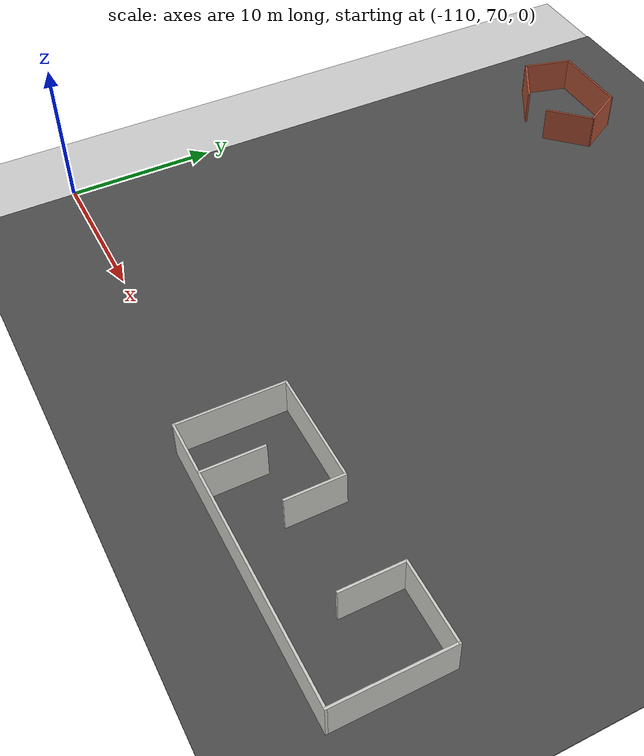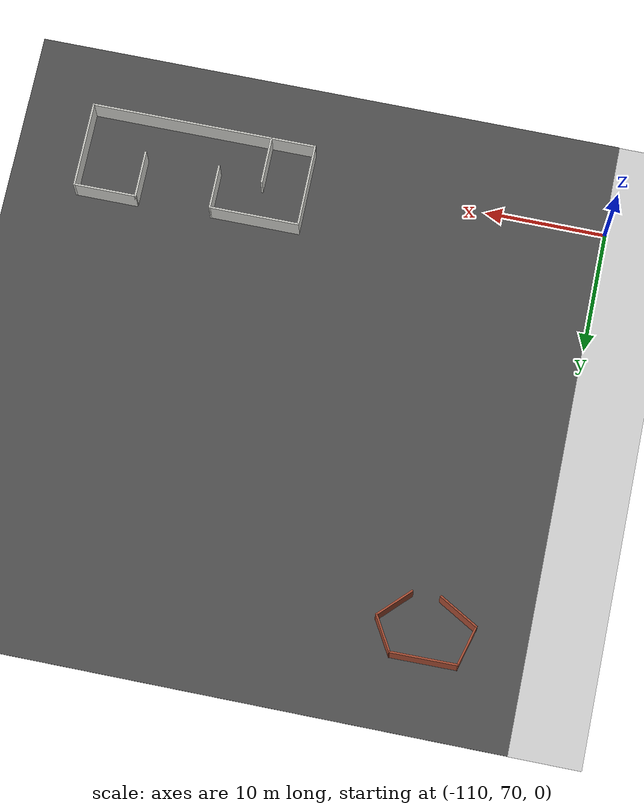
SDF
<sdf version="1.6">
 <world name="default">
  <model name="ground_plane">
   <static>1</static>
   <link name="link">
    <collision name="collision">
     <geometry><plane><normal>0 0 1</normal><size>250 250</size></plane></geometry>
     <surface><friction><ode><mu>100</mu><mu2>50</mu2></ode></friction></surface>
    </collision>
    <visual name="visual">
     <cast_shadows>0</cast_shadows>
     <geometry><plane><normal>0 0 1</normal><size>250 250</size></plane></geometry>
     <material>
      <script><uri>file://media/materials/scripts/gazebo.material</uri><name>Gazebo/Grey</name></script>
     </material>
    </visual>
   </link>
  </model>
  <model name="asphalt_plane">
   <static>1</static>
   <link name="link">
    <collision name="collision"><geometry><box><size>250 250 0.1</size></box></geometry></collision>
    <visual name="visual">
     <cast_shadows>0</cast_shadows>
     <geometry><box><size>250 250 0.1</size></box></geometry>
     <material>
      <script>
       <uri>model://asphalt_plane/materials/scripts</uri>
       <uri>model://asphalt_plane/materials/textures</uri>
       <name>vrc/asphalt</name>
      </script>
     </material>
    </visual>
   </link>
   <pose>15.141 -2.59476 0 0 -0 0</pose>
  </model>
  <model name="concrete_room2_clone">
   <pose>-75.9813 71.5021 0 0 -0 0</pose>
   <link name="Wall_61">
    <collision name="Wall_61_Collision">
     <geometry><box><size>5.25 0.15 2.5</size></box></geometry>
     <pose>0 0 1.25 0 -0 0</pose>
    </collision>
    <visual name="Wall_61_Visual">
     <pose>0 0 1.25 0 -0 0</pose>
     <geometry><box><size>5.25 0.15 2.5</size></box></geometry>
     <material>
      <script><uri>file://media/materials/scripts/gazebo.material</uri><name>Gazebo/CeilingTiled</name></script>
      <ambient>1 1 1 1</ambient>
     </material>
     <meta><layer>0</layer></meta>
    </visual>
    <pose>6.75 3.55 0 0 -0 0</pose>
   </link>
   <link name="Wall_62">
    <collision name="Wall_62_Collision">
     <geometry><box><size>7.25 0.15 2.5</size></box></geometry>
     <pose>0 0 1.25 0 -0 0</pose>
    </collision>
    <visual name="Wall_62_Visual">
     <pose>0 0 1.25 0 -0 0</pose>
     <geometry><box><size>7.25 0.15 2.5</size></box></geometry>
     <material>
      <script><uri>file://media/materials/scripts/gazebo.material</uri><name>Gazebo/CeilingTiled</name></script>
      <ambient>1 1 1 1</ambient>
     </material>
     <meta><layer>0</layer></meta>
    </visual>
    <pose>9.3 0 0 0 0 -1.5708</pose>
   </link>
   <link name="Wall_63">
    <collision name="Wall_63_Collision">
     <geometry><box><size>18.75 0.15 2.5</size></box></geometry>
     <pose>0 0 1.25 0 -0 0</pose>
    </collision>
    <visual name="Wall_63_Visual">
     <pose>0 0 1.25 0 -0 0</pose>
     <geometry><box><size>18.75 0.15 2.5</size></box></geometry>
     <material>
      <script><uri>file://media/materials/scripts/gazebo.material</uri><name>Gazebo/CeilingTiled</name></script>
      <ambient>1 1 1 1</ambient>
     </material>
     <meta><layer>0</layer></meta>
    </visual>
    <pose>0 -3.55 0 0 -0 3.14159</pose>
   </link>
   <link name="Wall_64">
    <collision name="Wall_64_Collision">
     <geometry><box><size>7 0.15 2.5</size></box></geometry>
     <pose>0 0 1.25 0 -0 0</pose>
    </collision>
    <visual name="Wall_64_Visual">
     <pose>0 0 1.25 0 -0 0</pose>
     <geometry><box><size>7 0.15 2.5</size></box></geometry>
     <material>
      <script><uri>file://media/materials/scripts/gazebo.material</uri><name>Gazebo/CeilingTiled</name></script>
      <ambient>1 1 1 1</ambient>
     </material>
     <meta><layer>0</layer></meta>
    </visual>
    <pose>-9.3 -0.125 0 0 -0 1.5708</pose>
   </link>
   <link name="Wall_65">
    <collision name="Wall_65_Collision">
     <geometry><box><size>7.5 0.15 2.5</size></box></geometry>
     <pose>0 0 1.25 0 -0 0</pose>
    </collision>
    <visual name="Wall_65_Visual">
     <pose>0 0 1.25 0 -0 0</pose>
     <geometry><box><size>7.5 0.15 2.5</size></box></geometry>
     <material>
      <script><uri>file://media/materials/scripts/gazebo.material</uri><name>Gazebo/CeilingTiled</name></script>
      <ambient>1 1 1 1</ambient>
     </material>
     <meta><layer>0</layer></meta>
    </visual>
    <pose>-5.625 3.3 0 0 -0 0</pose>
   </link>
   <link name="Wall_66">
    <collision name="Wall_66_Collision">
     <geometry><box><size>3.75 0.15 2.5</size></box></geometry>
     <pose>0 0 1.25 0 -0 0</pose>
    </collision>
    <visual name="Wall_66_Visual">
     <pose>0 0 1.25 0 -0 0</pose>
     <geometry><box><size>3.75 0.15 2.5</size></box></geometry>
     <material>
      <script><uri>file://media/materials/scripts/gazebo.material</uri><name>Gazebo/CeilingTiled</name></script>
      <ambient>1 1 1 1</ambient>
     </material>
     <meta><layer>0</layer></meta>
    </visual>
    <pose>-1.95 1.5 0 0 0 -1.5708</pose>
   </link>
   <link name="Wall_70">
    <collision name="Wall_70_Collision">
     <geometry><box><size>4 0.15 2.5</size></box></geometry>
     <pose>0 0 1.25 0 -0 0</pose>
    </collision>
    <visual name="Wall_70_Visual">
     <pose>0 0 1.25 0 -0 0</pose>
     <geometry><box><size>4 0.15 2.5</size></box></geometry>
     <material>
      <script><uri>file://media/materials/scripts/gazebo.material</uri><name>Gazebo/CeilingTiled</name></script>
      <ambient>1 1 1 1</ambient>
     </material>
     <meta><layer>0</layer></meta>
    </visual>
    <pose>4.2 1.625 0 0 0 -1.5708</pose>
   </link>
   <link name="Wall_72">
    <collision name="Wall_72_Collision">
     <geometry><box><size>4 0.15 2.5</size></box></geometry>
     <pose>0 0 1.25 0 -0 0</pose>
    </collision>
    <visual name="Wall_72_Visual">
     <pose>0 0 1.25 0 -0 0</pose>
     <geometry><box><size>4 0.15 2.5</size></box></geometry>
     <material>
      <script><uri>file://media/materials/scripts/gazebo.material</uri><name>Gazebo/CeilingTiled</name></script>
      <ambient>1 1 1 1</ambient>
     </material>
     <meta><layer>0</layer></meta>
    </visual>
    <pose>-5.65005 -1.59593 0 0 -0 1.5708</pose>
   </link>
   <static>1</static>
  </model>
  <model name="brick_room1_clone_clone_4">
   <pose>-101.677 105.13 0 0 -0 0</pose>
   <link name="Wall_11">
    <collision name="Wall_11_Collision">
     <geometry><box><size>3.25 0.15 2.5</size></box></geometry>
     <pose>0 0 1.25 0 -0 0</pose>
    </collision>
    <visual name="Wall_11_Visual">
     <pose>0 0 1.25 0 -0 0</pose>
     <geometry><box><size>3.25 0.15 2.5</size></box></geometry>
     <material>
      <script><uri>file://media/materials/scripts/gazebo.material</uri><name>Gazebo/Bricks</name></script>
      <ambient>1 1 1 1</ambient>
     </material>
    </visual>
    <pose>3.12132 1.19483 0 0 0 -1.0472</pose>
   </link>
   <link name="Wall_12">
    <collision name="Wall_12_Collision">
     <geometry><box><size>3.5 0.15 2.5</size></box></geometry>
     <pose>0 0 1.25 0 -0 0</pose>
    </collision>
    <visual name="Wall_12_Visual">
     <pose>0 0 1.25 0 -0 0</pose>
     <geometry><box><size>3.5 0.15 2.5</size></box></geometry>
     <material>
      <script><uri>file://media/materials/scripts/gazebo.material</uri><name>Gazebo/Bricks</name></script>
      <ambient>1 1 1 1</ambient>
     </material>
    </visual>
    <pose>2.71192 -1.33192 0 0 0 -2.35619</pose>
   </link>
   <link name="Wall_7">
    <collision name="Wall_7_Collision">
     <geometry><box><size>5.52935 0.15 2.5</size></box></geometry>
     <pose>0 0 1.25 0 -0 0</pose>
    </collision>
    <visual name="Wall_7_Visual">
     <pose>0 0 1.25 0 -0 0</pose>
     <geometry><box><size>5.52935 0.15 2.5</size></box></geometry>
     <material>
      <script><uri>file://media/materials/scripts/gazebo.material</uri><name>Gazebo/Bricks</name></script>
      <ambient>1 1 1 1</ambient>
     </material>
    </visual>
    <pose>-0.343285 2.51793 0 0 0 -3.13444</pose>
   </link>
   <link name="Wall_8">
    <collision name="Wall_8_Collision">
     <geometry><box><size>3.5 0.15 2.5</size></box></geometry>
     <pose>0 0 1.25 0 -0 0</pose>
    </collision>
    <visual name="Wall_8_Visual">
     <pose>0 0 1.25 0 -0 0</pose>
     <geometry><box><size>3.5 0.15 2.5</size></box></geometry>
     <material>
      <script><uri>file://media/materials/scripts/gazebo.material</uri><name>Gazebo/Bricks</name></script>
      <ambient>1 1 1 1</ambient>
     </material>
    </visual>
    <pose>-3.46641 0.880761 0 0 0 -1.8326</pose>
   </link>
   <link name="Wall_9">
    <collision name="Wall_9_Collision">
     <geometry><box><size>3.75 0.15 2.5</size></box></geometry>
     <pose>0 0 1.25 0 -0 0</pose>
    </collision>
    <visual name="Wall_9_Visual">
     <pose>0 0 1.25 0 -0 0</pose>
     <geometry><box><size>3.75 0.15 2.5</size></box></geometry>
     <material>
      <script><uri>file://media/materials/scripts/gazebo.material</uri><name>Gazebo/Bricks</name></script>
      <ambient>1 1 1 1</ambient>
     </material>
    </visual>
    <pose>-2.34109 -1.63716 0 0 0 -0.523599</pose>
   </link>
   <static>1</static>
  </model>
 </world>
</sdf>
